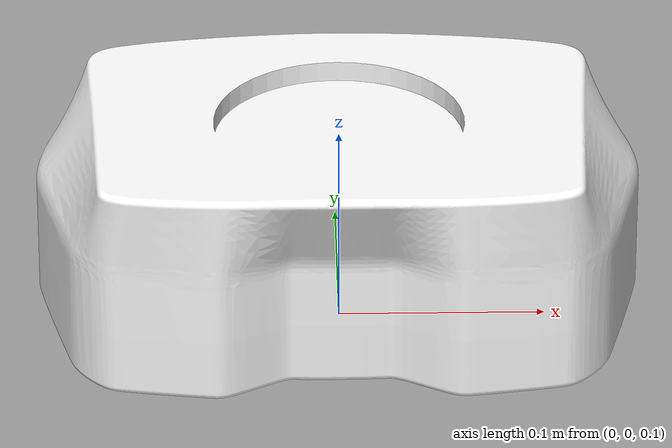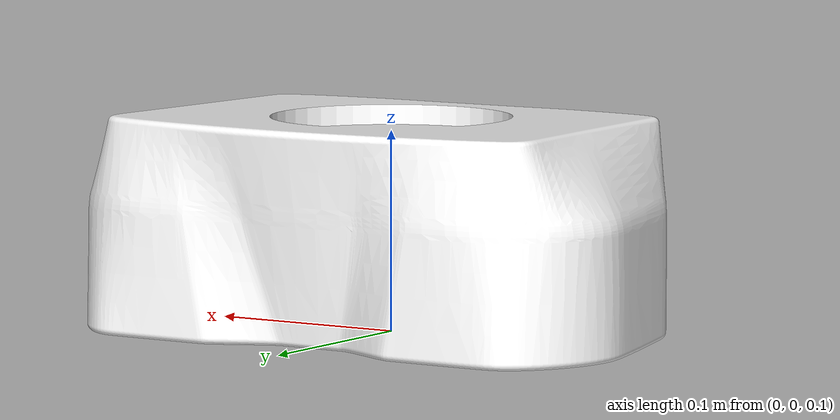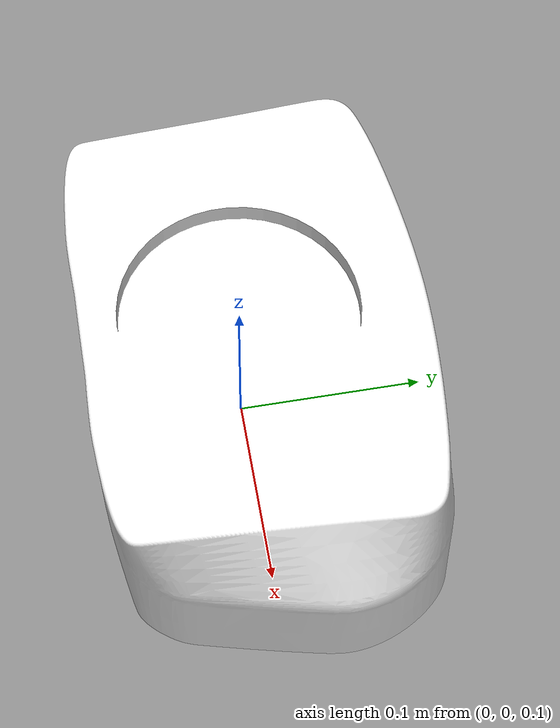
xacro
<?xml version="1.0"?>
<robot xmlns:xacro="http://www.ros.org/wiki/xacro" name="ar600">

	<xacro:include filename="meshes.xacro"/>

	<link name="base_link">
	    <xacro:meshes file="pelvis" xyz="0 0.0276 0"/>
	    <inertial>
 			<origin xyz="0 0.05 0" rpy="0 0 0"/>
  			<mass value="5.045"/>
  			<inertia ixx="0.0" ixy="0.0" ixz="0.0" iyy="0.0" iyz="0.0" izz="0.0"/>
    	</inertial>
  	</link>
</robot>

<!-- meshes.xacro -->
<robot xmlns:xacro="http://www.ros.org/wiki/xacro">
	<xacro:macro name="meshes" params="file xyz:='0 0 0' rpy:='0 0 0'">
		<visual>
 			<origin xyz="${xyz}" rpy="${rpy}"/>
 			<geometry>
 				<mesh filename="package://ar600_description/meshes/visual/${file}.stl"/>
 			</geometry>
 			<material name="white">
       			<color rgba="1.0 1.0 1.0 1.0"/>
     		</material>
	 	</visual>
	</xacro:macro>
</robot>
